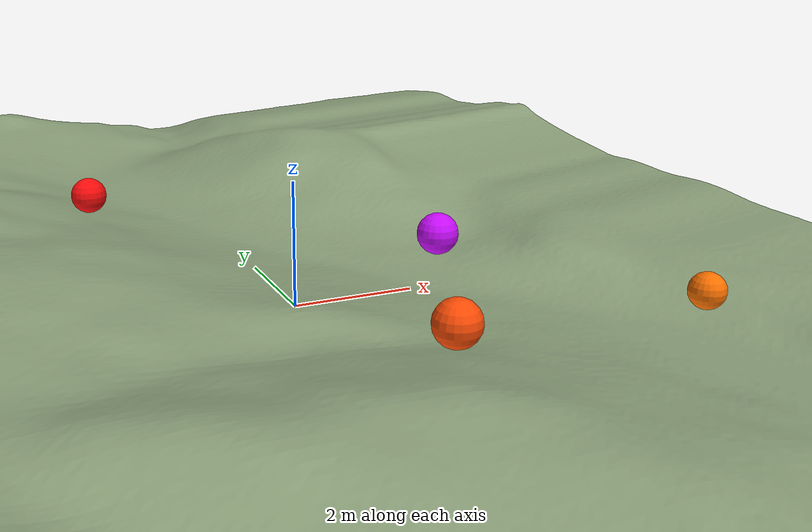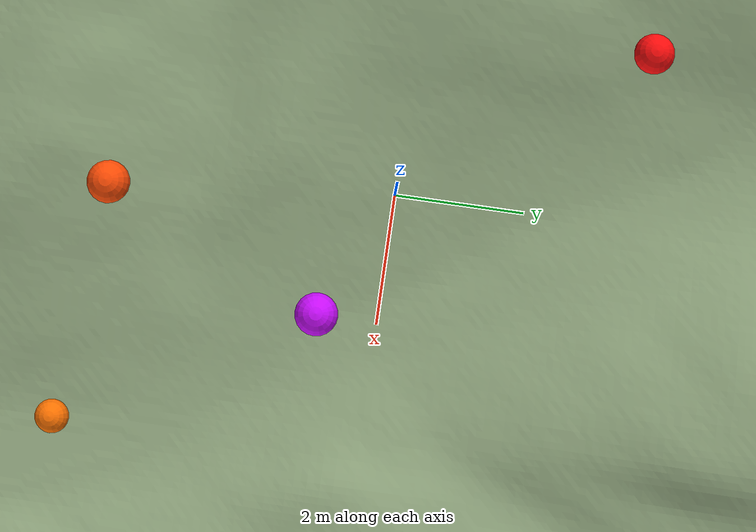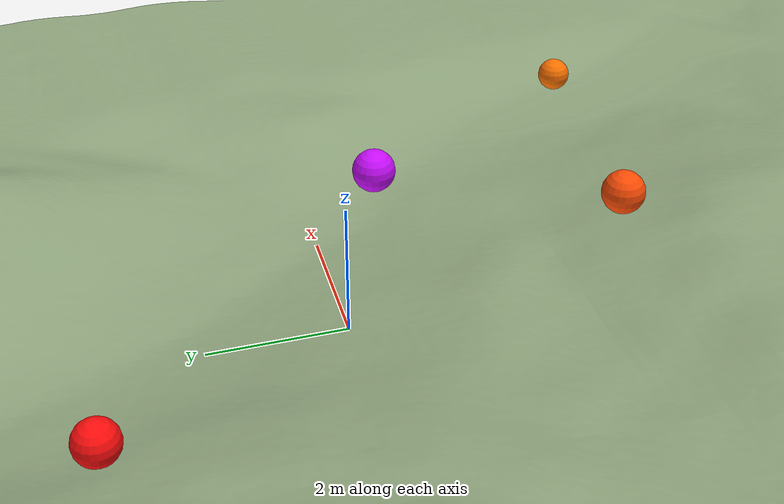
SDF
<?xml version='1.0' encoding='utf-8'?>
<sdf version="1.6">
  <world name="dem_inspired_benchmark_world">
    <gravity>0 0 -9.81</gravity>
    <plugin name="gazebo_ros_state" filename="libgazebo_ros_state.so">
      <ros>
        <namespace>/</namespace>
      </ros>
      <update_rate>10.0</update_rate>
    </plugin>
    <physics name="default_physics" type="ode">
      <max_step_size>0.001</max_step_size>
      <real_time_factor>1.0</real_time_factor>
      <real_time_update_rate>1000</real_time_update_rate>
      <ode>
        <solver>
          <type>quick</type>
          <iters>100</iters>
          <sor>1.3</sor>
        </solver>
        <constraints>
          <cfm>0.0</cfm>
          <erp>0.2</erp>
          <contact_max_correcting_vel>0.1</contact_max_correcting_vel>
          <contact_surface_layer>0.001</contact_surface_layer>
        </constraints>
      </ode>
    </physics>
    <scene>
      <ambient>0.75 0.75 0.75 1</ambient>
      <background>0.82 0.82 0.84 1</background>
      <shadows>false</shadows>
    </scene>
    <light name="terrain_light" type="directional">
      <cast_shadows>false</cast_shadows>
      <pose>0 0 30 0 0 0</pose>
      <diffuse>0.85 0.85 0.85 1</diffuse>
      <specular>0.05 0.05 0.05 1</specular>
      <attenuation>
        <range>1000</range>
        <constant>0.9</constant>
        <linear>0.01</linear>
        <quadratic>0.001</quadratic>
      </attenuation>
      <direction>-0.5 0.3 -1.0</direction>
    </light>
    <gui fullscreen="0">
      <camera name="user_camera">
        <pose>
          -34.500000
          -34.500000
          22.500000
          0 0.48 0.78
        </pose>
        <view_controller>orbit</view_controller>
      </camera>
    </gui>
    <model name="dem_inspired_terrain">
      <static>true</static>
      <link name="terrain_link">
        <collision name="terrain_collision">
          <geometry>
            <heightmap>
              <uri>file:///home/i/terrain_radiation_ws/src/radiation_mapping/dem/processed/dem_terrain_hard_husky_015_513.png</uri>
              <size>
                19.047619
                30.000000
                1.514038
              </size>
              <pos>0 0 0</pos>
              <sampling>1</sampling>
            </heightmap>
          </geometry>
          <surface>
            <friction>
              <ode>
                <mu>0.9</mu>
                <mu2>0.9</mu2>
              </ode>
            </friction>
            <contact>
              <ode>
                <kp>10000000</kp>
                <kd>10000</kd>
                <max_vel>0.2</max_vel>
                <min_depth>0.0</min_depth>
              </ode>
            </contact>
          </surface>
        </collision>
        <visual name="terrain_visual">
          <cast_shadows>true</cast_shadows>
          <geometry>
            <mesh>
              <uri>file:///home/i/terrain_radiation_ws/src/radiation_mapping/dem/processed/dem_terrain_hard_husky_visual.stl</uri>
              <scale>1 1 1</scale>
            </mesh>
          </geometry>
          <material>
            <ambient>0.25 0.30 0.23 1</ambient>
            <diffuse>0.55 0.63 0.48 1</diffuse>
            <specular>0.03 0.03 0.03 1</specular>
            <emissive>0.00 0.00 0.00 1</emissive>
          </material>
          <transparency>0.0</transparency>
        </visual>
      </link>
    </model>
    <model name="radiation_source_alpha">
      <static>true</static>
      <pose>-2.5 3.5 1.20 0 0 0</pose>
      <link name="source_link">
        <visual name="source_visual">
          <geometry>
            <sphere>
              <radius>0.30</radius>
            </sphere>
          </geometry>
          <material>
            <ambient>1.0 0.05 0.05 1</ambient>
            <diffuse>1.0 0.05 0.05 1</diffuse>
            <emissive>0.8 0.02 0.02 1</emissive>
          </material>
        </visual>
      </link>
    </model>
    <model name="radiation_source_beta">
      <static>true</static>
      <pose>4.0 -4.5 1.20 0 0 0</pose>
      <link name="source_link">
        <visual name="source_visual">
          <geometry>
            <sphere>
              <radius>0.25</radius>
            </sphere>
          </geometry>
          <material>
            <ambient>1.0 0.45 0.0 1</ambient>
            <diffuse>1.0 0.45 0.0 1</diffuse>
            <emissive>0.8 0.25 0.0 1</emissive>
          </material>
        </visual>
      </link>
    </model>
    <model name="radiation_source_gamma">
      <static>true</static>
      <pose>2.0 -0.9 1.2 0 0 0</pose>
      <link name="source_link">
        <visual name="source_visual">
          <geometry>
            <sphere>
              <radius>0.32</radius>
            </sphere>
          </geometry>
          <material>
            <ambient>0.80 0.05 1.00 1</ambient>
            <diffuse>0.80 0.05 1.00 1</diffuse>
            <emissive>0.80 0.05 1.00 1</emissive>
          </material>
        </visual>
      </link>
    </model>
    <model name="radiation_source_delta">
      <static>true</static>
      <pose>0.5 -4.2 1.2 0 0 0</pose>
      <link name="source_link">
        <visual name="source_visual">
          <geometry>
            <sphere>
              <radius>0.32</radius>
            </sphere>
          </geometry>
          <material>
            <ambient>1.00 0.30 0.02 1</ambient>
            <diffuse>1.00 0.30 0.02 1</diffuse>
            <emissive>1.00 0.30 0.02 1</emissive>
          </material>
        </visual>
      </link>
    </model>
    <plugin name="radiation_world_plugin" filename="libgazebo_radiation_world_plugin.so">
      <ros>
        <namespace>/</namespace>
      </ros>
      <target_model>husky</target_model>
      <background_dose_rate_usv_h>
        0.05
      </background_dose_rate_usv_h>
      <publish_rate_hz>10.0</publish_rate_hz>
      <use_3d_distance>false</use_3d_distance>
      <publish_radiation_map>
        true
      </publish_radiation_map>
      <terrain_map_topic>
        /terrain_impedance_map
      </terrain_map_topic>
      <radiation_map_topic>
        /ground_truth/radiation_map
      </radiation_map_topic>
      <radiation_map_saturation_usv_h>10.0</radiation_map_saturation_usv_h>
      <radiation_map_use_3d_distance>
        false
      </radiation_map_use_3d_distance>
      <radiation_map_z_m>
        0.0
      </radiation_map_z_m>
      <dose_rate_topic>
        /radiation/dose_rate_usv_h
      </dose_rate_topic>
      <accumulated_dose_topic>
        /radiation/accumulated_dose_usv
      </accumulated_dose_topic>
      <nearest_distance_topic>
        /radiation/nearest_source_distance_m
      </nearest_distance_topic>
      <source>
        <model_name>
          radiation_source_alpha
        </model_name>
        <strength_usv_h_m2>14.0</strength_usv_h_m2>
        <softening_radius_m>0.80</softening_radius_m>
        <attenuation_per_m>0.012</attenuation_per_m>
      </source>
      <source>
        <model_name>
          radiation_source_beta
        </model_name>
        <strength_usv_h_m2>12.0</strength_usv_h_m2>
        <softening_radius_m>0.85</softening_radius_m>
        <attenuation_per_m>0.012</attenuation_per_m>
      </source>
      <source>
        <model_name>radiation_source_gamma</model_name>
        <strength_usv_h_m2>30.0</strength_usv_h_m2>
        <softening_radius_m>0.80</softening_radius_m>
        <attenuation_per_m>0.012</attenuation_per_m>
      </source>
      <source>
        <model_name>radiation_source_delta</model_name>
        <strength_usv_h_m2>24.0</strength_usv_h_m2>
        <softening_radius_m>0.80</softening_radius_m>
        <attenuation_per_m>0.012</attenuation_per_m>
      </source>
    </plugin>
  </world>
</sdf>
